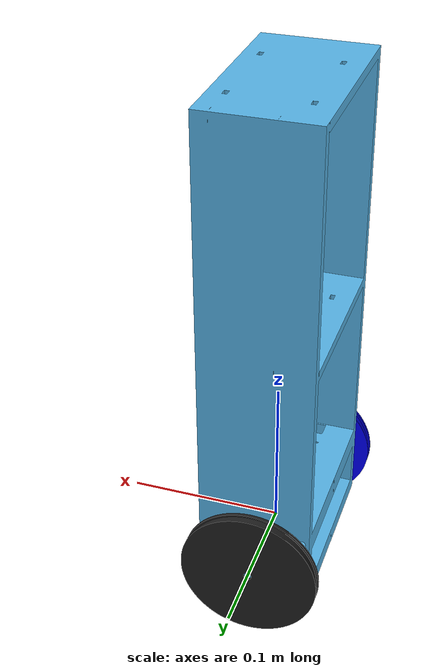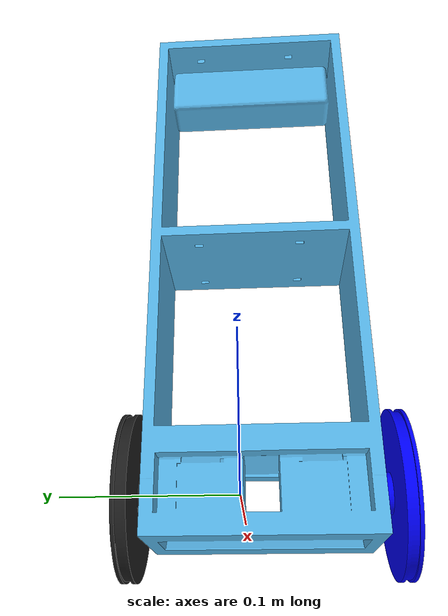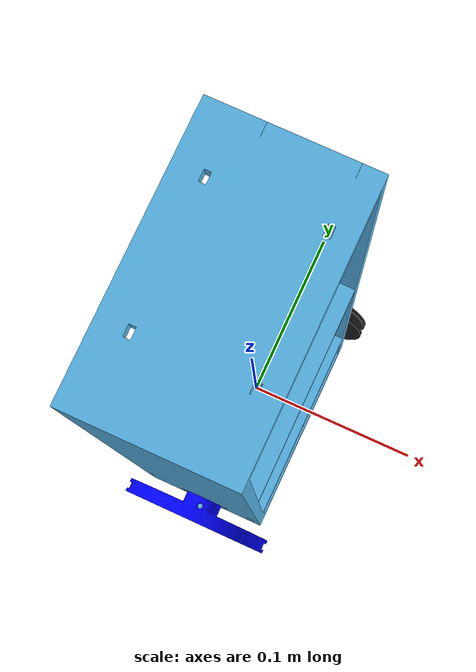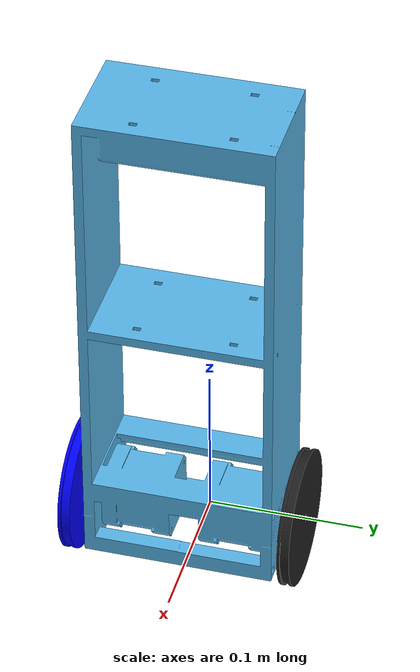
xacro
<?xml version="1.0"?>
<robot name="robot" xmlns:xacro="http://ros.org/wiki/xacro">
  <xacro:include filename="$(find rbe502_sim)/urdf/robot.gazebo.xacro"/>

  <material name="blue">
    <color rgba="0 0 1 1"/>
  </material>

  <link name="base_footprint"/>

  <link name="base_link">
    <visual>
      <geometry>
        <mesh filename="package://rbe502_sim/meshes/RobotBody.stl" scale="0.001 0.001 0.001"/>
      </geometry>
      <origin rpy="${pi/2} 0 0"/>
    </visual>
    <inertial>
      <mass value="1.51518"/>
      <inertia ixx="2.286e-2" ixy="-2799.989e-9" ixz="-1384.644e-9" iyy="3.069e-3" iyz="-1.063e-3" izz="2.054e-2"/>
      <origin rpy="${pi/2} 0 0"/>

    </inertial>
    <collision>
      <geometry>
       <mesh filename="package://rbe502_sim/meshes/RobotBody.stl" scale="0.001 0.001 0.001"/>
      </geometry>

      <origin rpy="${pi/2} 0 0"/>
    </collision>
  </link> -->

  <joint name="footprint_to_base_link" type="fixed">
    <parent link="base_footprint"/>
    <child link="base_link"/>
  </joint>

  <link name="left_wheel">
    <visual>
      <geometry>
        <mesh filename="package://rbe502_sim/meshes/BalanceRobot/Wheel.stl" scale="0.001 0.001 0.001"/>
      </geometry>
      <origin xyz="0 0 0" rpy="${pi/2} 0 0"/>
      <material name="blue"/>
    </visual>
    <inertial>
      <mass value="0.053337"/>
      <inertia ixx="1.988e-2" ixy=" -1657.286e-9" ixz="-6297.698e-9" iyy="4.177e-3" iyz="2.292e-3" izz="1.645e-2"/>
      <origin xyz="0 0 0" rpy="${pi/2} 0 0"/>
    </inertial>
    <collision>
      <geometry>
       <mesh filename="package://rbe502_sim/meshes/BalanceRobot/Wheel.stl" scale="0.001 0.001 0.001"/>
      </geometry>
      <origin xyz="0 0 0" rpy="${pi/2} 0 0"/>
    </collision>
  </link>

  <joint name="base_link_to_left_wheel" type="continuous">
    <parent link="base_link"/>
    <child link="left_wheel"/>
    <axis xyz="0 1 0"/>
    <origin xyz="0 -0.081 0"/>
  </joint>

  <link name="right_wheel">
    <visual>
      <geometry>
        <mesh filename="package://rbe502_sim/meshes/BalanceRobot/Wheel.stl" scale="0.001 0.001 0.001"/>
      </geometry>
      <origin xyz="0 0 0" rpy="${pi/2} 0 ${pi}"/>
    </visual>
    <inertial>
      <mass value="0.053337"/>
      <inertia ixx="1.988e-2" ixy=" -1657.286e-9" ixz="-6297.698e-9" iyy="4.177e-3" iyz="2.292e-3" izz="1.645e-2"/>
      <origin xyz="0 0 0" rpy="${pi/2} 0 ${pi}"/>

    </inertial>
    <collision>
      <geometry>
        <mesh filename="package://rbe502_sim/meshes/BalanceRobot/Wheel.stl" scale="0.001 0.001 0.001"/>
      </geometry>
      <origin xyz="0 0 0" rpy="${pi/2} 0 ${pi}"/>
    </collision>
  </link>

  <joint name="base_link_to_right_wheel" type="continuous">
    <parent link="base_link"/>
    <child link="right_wheel"/>
    <axis xyz="0 1 0"/>
    <origin xyz="0 0.055 0" rpy="0 0 0"/>
  </joint>

<link name="imu_link"/>

<joint name="imu_linked" type="fixed">
  <parent link="base_link"/>
  <child link="imu_link"/>
  <origin xyz="0 0 .1475 "/>
</joint>

</robot>
